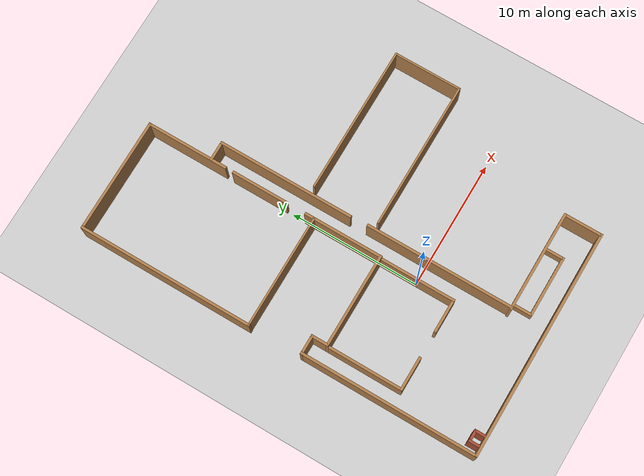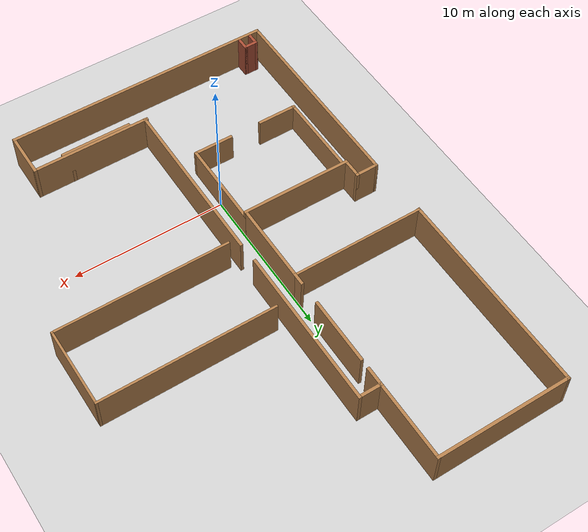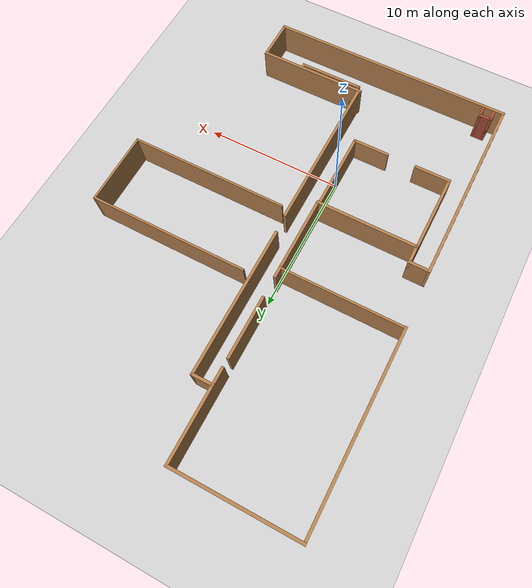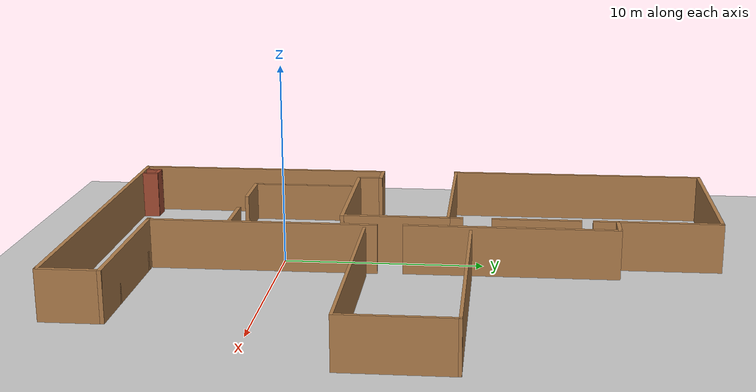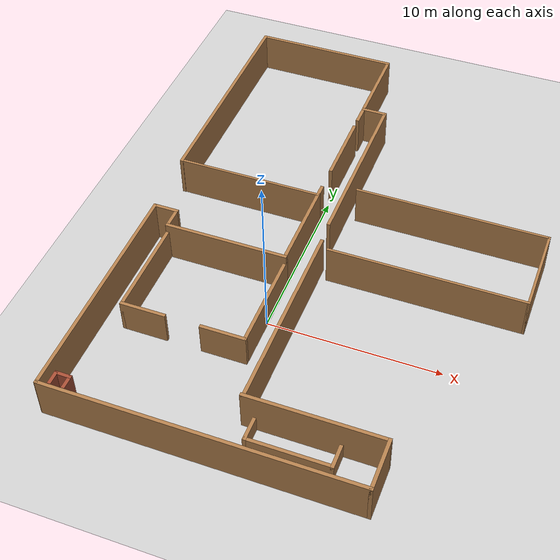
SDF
<sdf version="1.7">
 <world name="default">
  <light name="sun" type="directional">
   <pose>0 0 10 0 -0 0</pose>
   <diffuse>0.8 0.8 0.8 1</diffuse>
   <specular>0.2 0.2 0.2 1</specular>
   <attenuation>
    <range>1000</range>
    <constant>0.9</constant>
    <linear>0.01</linear>
    <quadratic>0.001</quadratic>
   </attenuation>
   <direction>-0.5 0.1 -0.9</direction>
   <spot><inner_angle>0</inner_angle><outer_angle>0</outer_angle><falloff>0</falloff></spot>
  </light>
  <model name="ground_plane">
   <static>1</static>
   <link name="link">
    <collision name="collision">
     <geometry><plane><normal>0 0 1</normal><size>100 100</size></plane></geometry>
     <surface>
      <contact><collide_bitmask>65535</collide_bitmask></contact>
      <friction><ode><mu>100</mu><mu2>50</mu2></ode></friction>
     </surface>
    </collision>
    <visual name="visual">
     <cast_shadows>0</cast_shadows>
     <geometry><plane><normal>0 0 1</normal><size>100 100</size></plane></geometry>
     <material>
      <script><uri>file://media/materials/scripts/gazebo.material</uri><name>Gazebo/Grey</name></script>
     </material>
    </visual>
   </link>
  </model>
  <gravity>0 0 -9.8</gravity>
  <magnetic_field>6e-06 2.3e-05 -4.2e-05</magnetic_field>
  <atmosphere type="adiabatic"/>
  <physics type="ode">
   <max_step_size>0.001</max_step_size>
   <real_time_factor>1</real_time_factor>
   <real_time_update_rate>1000</real_time_update_rate>
  </physics>
  <scene><ambient>0.4 0.4 0.7 1</ambient><background>0.7 0.7 0.7 1</background><shadows>1</shadows></scene>
  <spherical_coordinates>
   <surface_model>EARTH_WGS84</surface_model>
   <latitude_deg>0</latitude_deg>
   <longitude_deg>0</longitude_deg>
   <elevation>0</elevation>
   <heading_deg>0</heading_deg>
  </spherical_coordinates>
  <model name="lounge">
   <pose>0.24984 3.58928 0 0 -0 0</pose>
   <link name="Wall_1">
    <collision name="Wall_1_Collision">
     <geometry><box><size>7.32 0.2 2.5</size></box></geometry>
     <pose>0 0 1.25 0 -0 0</pose>
    </collision>
    <visual name="Wall_1_Visual">
     <pose>0 0 1.25 0 -0 0</pose>
     <geometry><box><size>7.32 0.2 2.5</size></box></geometry>
     <material>
      <script><uri>file://media/materials/scripts/gazebo.material</uri><name>Gazebo/Wood</name></script>
      <ambient>1 1 1 1</ambient>
     </material>
     <meta><layer>0</layer></meta>
    </visual>
    <pose>-3.84095 -0.669 0 0 -0 0</pose>
   </link>
   <link name="Wall_12">
    <collision name="Wall_12_Collision">
     <geometry><box><size>17.693 0.2 2.5</size></box></geometry>
     <pose>0 0 1.25 0 -0 0</pose>
    </collision>
    <visual name="Wall_12_Visual">
     <pose>0 0 1.25 0 -0 0</pose>
     <geometry><box><size>17.693 0.2 2.5</size></box></geometry>
     <material>
      <script><uri>file://media/materials/scripts/gazebo.material</uri><name>Gazebo/Wood</name></script>
      <ambient>1 1 1 1</ambient>
     </material>
     <meta><layer>0</layer></meta>
    </visual>
    <pose>0.021555 -12.99 0 0 -0 0</pose>
   </link>
   <link name="Wall_2">
    <collision name="Wall_2_Collision">
     <geometry><box><size>6 0.2 2</size></box></geometry>
     <pose>0 0 1 0 -0 0</pose>
    </collision>
    <visual name="Wall_2_Visual">
     <pose>0 0 1 0 -0 0</pose>
     <geometry><box><size>6 0.2 2</size></box></geometry>
     <material>
      <script><uri>file://media/materials/scripts/gazebo.material</uri><name>Gazebo/Wood</name></script>
      <ambient>1 1 1 1</ambient>
     </material>
     <meta><layer>0</layer></meta>
    </visual>
    <pose>-0.280945 -3.569 0 0 -0 -1.5708</pose>
   </link>
   <link name="Wall_37">
    <collision name="Wall_37_Collision">
     <geometry><box><size>13.7 0.2 2.5</size></box></geometry>
     <pose>0 0 1.25 0 -0 0</pose>
    </collision>
    <visual name="Wall_37_Visual">
     <pose>0 0 1.25 0 -0 0</pose>
     <geometry><box><size>13.7 0.2 2.5</size></box></geometry>
     <material>
      <script><uri>file://media/materials/scripts/gazebo.material</uri><name>Gazebo/Wood</name></script>
      <ambient>1 1 1 1</ambient>
     </material>
     <meta><layer>0</layer></meta>
    </visual>
    <pose>-8.76794 -6.219 0 0 -0 1.5708</pose>
   </link>
   <link name="Wall_4">
    <collision name="Wall_4_Collision">
     <geometry><box><size>6 0.2 2</size></box></geometry>
     <pose>0 0 1 0 -0 0</pose>
    </collision>
    <visual name="Wall_4_Visual">
     <pose>0 0 1 0 -0 0</pose>
     <geometry><box><size>6 0.2 2</size></box></geometry>
     <material>
      <script><uri>file://media/materials/scripts/gazebo.material</uri><name>Gazebo/Wood</name></script>
      <ambient>1 1 1 1</ambient>
     </material>
     <meta><layer>0</layer></meta>
    </visual>
    <pose>-7.40095 -3.569 0 0 -0 -1.5708</pose>
   </link>
   <link name="Wall_41">
    <collision name="Wall_41_Collision">
     <geometry><box><size>1.4 0.2 2.5</size></box></geometry>
     <pose>0 0 1.25 0 -0 0</pose>
    </collision>
    <visual name="Wall_41_Visual">
     <pose>0 0 1.25 0 -0 0</pose>
     <geometry><box><size>1.4 0.2 2.5</size></box></geometry>
     <material>
      <script><uri>file://media/materials/scripts/gazebo.material</uri><name>Gazebo/Wood</name></script>
      <ambient>1 1 1 1</ambient>
     </material>
     <meta><layer>0</layer></meta>
    </visual>
    <pose>-7.40095 -0.069 0 0 -0 1.5708</pose>
   </link>
   <link name="Wall_43">
    <collision name="Wall_43_Collision">
     <geometry><box><size>1.56722 0.2 2.5</size></box></geometry>
     <pose>0 0 1.25 0 -0 0</pose>
    </collision>
    <visual name="Wall_43_Visual">
     <pose>0 0 1.25 0 -0 0</pose>
     <geometry><box><size>1.56722 0.2 2.5</size></box></geometry>
     <material>
      <script><uri>file://media/materials/scripts/gazebo.material</uri><name>Gazebo/Wood</name></script>
      <ambient>1 1 1 1</ambient>
     </material>
     <meta><layer>0</layer></meta>
    </visual>
    <pose>-8.08445 0.531 0 0 -0 0</pose>
   </link>
   <link name="Wall_45">
    <collision name="Wall_45_Collision">
     <geometry><box><size>1.6 0.2 2.5</size></box></geometry>
     <pose>0 0 1.25 0 -0 0</pose>
    </collision>
    <visual name="Wall_45_Visual">
     <pose>0 0 1.25 0 -0 0</pose>
     <geometry><box><size>1.6 0.2 2.5</size></box></geometry>
     <material>
      <script><uri>file://media/materials/scripts/gazebo.material</uri><name>Gazebo/Wood</name></script>
      <ambient>1 1 1 1</ambient>
     </material>
     <meta><layer>0</layer></meta>
    </visual>
    <pose>0.418055 12.99 0 0 -0 0</pose>
   </link>
   <link name="Wall_5">
    <collision name="Wall_5_Collision">
     <geometry><box><size>2.67 0.2 2</size></box></geometry>
     <pose>0 0 1 0 -0 0</pose>
    </collision>
    <visual name="Wall_5_Visual">
     <pose>0 0 1 0 -0 0</pose>
     <geometry><box><size>2.67 0.2 2</size></box></geometry>
     <material>
      <script><uri>file://media/materials/scripts/gazebo.material</uri><name>Gazebo/Wood</name></script>
      <ambient>1 1 1 1</ambient>
     </material>
     <meta><layer>0</layer></meta>
    </visual>
    <pose>-6.16594 -6.469 0 0 -0 0</pose>
   </link>
   <link name="Wall_51">
    <collision name="Wall_51_Collision">
     <geometry><box><size>7.85 0.2 2.5</size></box></geometry>
     <pose>0 0 1.25 0 -0 0</pose>
    </collision>
    <visual name="Wall_51_Visual">
     <pose>0 0 1.25 0 -0 0</pose>
     <geometry><box><size>7.85 0.2 2.5</size></box></geometry>
     <material>
      <script><uri>file://media/materials/scripts/gazebo.material</uri><name>Gazebo/Wood</name></script>
      <ambient>1 1 1 1</ambient>
     </material>
     <meta><layer>0</layer></meta>
    </visual>
    <pose>4.94306 -10.14 0 0 -0 0</pose>
   </link>
   <link name="Wall_53">
    <collision name="Wall_53_Collision">
     <geometry><box><size>3.05 0.2 2.5</size></box></geometry>
     <pose>0 0 1.25 0 -0 0</pose>
    </collision>
    <visual name="Wall_53_Visual">
     <pose>0 0 1.25 0 -0 0</pose>
     <geometry><box><size>3.05 0.2 2.5</size></box></geometry>
     <material>
      <script><uri>file://media/materials/scripts/gazebo.material</uri><name>Gazebo/Wood</name></script>
      <ambient>1 1 1 1</ambient>
     </material>
     <meta><layer>0</layer></meta>
    </visual>
    <pose>8.76806 -11.565 0 0 -0 1.5708</pose>
   </link>
   <link name="Wall_57">
    <collision name="Wall_57_Collision">
     <geometry><box><size>1.61 0.2 1</size></box></geometry>
     <pose>0 0 0.5 0 -0 0</pose>
    </collision>
    <visual name="Wall_57_Visual">
     <pose>0 0 0.5 0 -0 0</pose>
     <geometry><box><size>1.61 0.2 1</size></box></geometry>
     <material>
      <script><uri>file://media/materials/scripts/gazebo.material</uri><name>Gazebo/Wood</name></script>
      <ambient>1 1 1 1</ambient>
     </material>
     <meta><layer>0</layer></meta>
    </visual>
    <pose>1.78005 -10.845 0 0 -0 -1.5708</pose>
   </link>
   <link name="Wall_58">
    <collision name="Wall_58_Collision">
     <geometry><box><size>4.81 0.2 1</size></box></geometry>
     <pose>0 0 0.5 0 -0 0</pose>
    </collision>
    <visual name="Wall_58_Visual">
     <pose>0 0 0.5 0 -0 0</pose>
     <geometry><box><size>4.81 0.2 1</size></box></geometry>
     <material>
      <script><uri>file://media/materials/scripts/gazebo.material</uri><name>Gazebo/Wood</name></script>
      <ambient>1 1 1 1</ambient>
     </material>
     <meta><layer>0</layer></meta>
    </visual>
    <pose>4.08505 -11.55 0 0 -0 0</pose>
   </link>
   <link name="Wall_59">
    <collision name="Wall_59_Collision">
     <geometry><box><size>1.61 0.2 1</size></box></geometry>
     <pose>0 0 0.5 0 -0 0</pose>
    </collision>
    <visual name="Wall_59_Visual">
     <pose>0 0 0.5 0 -0 0</pose>
     <geometry><box><size>1.61 0.2 1</size></box></geometry>
     <material>
      <script><uri>file://media/materials/scripts/gazebo.material</uri><name>Gazebo/Wood</name></script>
      <ambient>1 1 1 1</ambient>
     </material>
     <meta><layer>0</layer></meta>
    </visual>
    <pose>6.39006 -10.845 0 0 -0 1.5708</pose>
   </link>
   <link name="Wall_61">
    <collision name="Wall_61_Collision">
     <geometry><box><size>10.6 0.2 2.5</size></box></geometry>
     <pose>0 0 1.25 0 -0 0</pose>
    </collision>
    <visual name="Wall_61_Visual">
     <pose>0 0 1.25 0 -0 0</pose>
     <geometry><box><size>10.6 0.2 2.5</size></box></geometry>
     <material>
      <script><uri>file://media/materials/scripts/gazebo.material</uri><name>Gazebo/Wood</name></script>
      <ambient>1 1 1 1</ambient>
     </material>
     <meta><layer>0</layer></meta>
    </visual>
    <pose>1.11806 7.79 0 0 -0 -1.5708</pose>
   </link>
   <link name="Wall_63">
    <collision name="Wall_63_Collision">
     <geometry><box><size>11.5 0.2 2.5</size></box></geometry>
     <pose>0 0 1.25 0 -0 0</pose>
    </collision>
    <visual name="Wall_63_Visual">
     <pose>0 0 1.25 0 -0 0</pose>
     <geometry><box><size>11.5 0.2 2.5</size></box></geometry>
     <material>
      <script><uri>file://media/materials/scripts/gazebo.material</uri><name>Gazebo/Wood</name></script>
      <ambient>1 1 1 1</ambient>
     </material>
     <meta><layer>0</layer></meta>
    </visual>
    <pose>1.2 -4.49 0 0 -0 1.5708</pose>
   </link>
   <link name="Wall_7">
    <collision name="Wall_7_Collision">
     <geometry><box><size>2.67 0.2 2</size></box></geometry>
     <pose>0 0 1 0 -0 0</pose>
    </collision>
    <visual name="Wall_7_Visual">
     <pose>0 0 1 0 -0 0</pose>
     <geometry><box><size>2.67 0.2 2</size></box></geometry>
     <material>
      <script><uri>file://media/materials/scripts/gazebo.material</uri><name>Gazebo/Wood</name></script>
      <ambient>1 1 1 1</ambient>
     </material>
     <meta><layer>0</layer></meta>
    </visual>
    <pose>-1.51595 -6.469 0 0 -0 3.14159</pose>
   </link>
   <static>1</static>
  </model>
  <model name="lecture">
   <pose>7.64778 6.8415 -0 0 -0 0</pose>
   <link name="Wall_0">
    <collision name="Wall_0_Collision">
     <geometry><box><size>11.45 0.15 2.5</size></box></geometry>
     <pose>0 0 1.25 0 -0 0</pose>
    </collision>
    <visual name="Wall_0_Visual">
     <pose>0 0 1.25 0 -0 0</pose>
     <geometry><box><size>11.45 0.15 2.5</size></box></geometry>
     <material>
      <script><uri>file://media/materials/scripts/gazebo.material</uri><name>Gazebo/Wood</name></script>
      <ambient>1 1 1 1</ambient>
     </material>
     <meta><layer>0</layer></meta>
    </visual>
    <pose>-0 -2.575 0 0 -0 0</pose>
   </link>
   <link name="Wall_1">
    <collision name="Wall_1_Collision">
     <geometry><box><size>5.3 0.15 2.5</size></box></geometry>
     <pose>0 0 1.25 0 -0 0</pose>
    </collision>
    <visual name="Wall_1_Visual">
     <pose>0 0 1.25 0 -0 0</pose>
     <geometry><box><size>5.3 0.15 2.5</size></box></geometry>
     <material>
      <script><uri>file://media/materials/scripts/gazebo.material</uri><name>Gazebo/Wood</name></script>
      <ambient>1 1 1 1</ambient>
     </material>
     <meta><layer>0</layer></meta>
    </visual>
    <pose>5.65 -0 0 0 -0 1.5708</pose>
   </link>
   <link name="Wall_2">
    <collision name="Wall_2_Collision">
     <geometry><box><size>11.45 0.15 2.5</size></box></geometry>
     <pose>0 0 1.25 0 -0 0</pose>
    </collision>
    <visual name="Wall_2_Visual">
     <pose>0 0 1.25 0 -0 0</pose>
     <geometry><box><size>11.45 0.15 2.5</size></box></geometry>
     <material>
      <script><uri>file://media/materials/scripts/gazebo.material</uri><name>Gazebo/Wood</name></script>
      <ambient>1 1 1 1</ambient>
     </material>
     <meta><layer>0</layer></meta>
    </visual>
    <pose>-0 2.575 0 0 -0 3.14159</pose>
   </link>
   <static>1</static>
  </model>
  <model name="experiment">
   <pose>-2.55572 12.3801 0 0 -0 0</pose>
   <link name="Wall_10">
    <collision name="Wall_10_Collision">
     <geometry><box><size>8.82 0.15 2.5</size></box></geometry>
     <pose>0 0 1.25 0 -0 0</pose>
    </collision>
    <visual name="Wall_10_Visual">
     <pose>0 0 1.25 0 -0 0</pose>
     <geometry><box><size>8.82 0.15 2.5</size></box></geometry>
     <material>
      <script><uri>file://media/materials/scripts/gazebo.material</uri><name>Gazebo/Wood</name></script>
      <ambient>1 1 1 1</ambient>
     </material>
     <meta><layer>0</layer></meta>
    </visual>
    <pose>-1.813 -4.16005 0 0 -0 3.14159</pose>
   </link>
   <link name="Wall_12">
    <collision name="Wall_12_Collision">
     <geometry><box><size>13.62 0.2 2.5</size></box></geometry>
     <pose>0 0 1.25 0 -0 0</pose>
    </collision>
    <visual name="Wall_12_Visual">
     <pose>0 0 1.25 0 -0 0</pose>
     <geometry><box><size>13.62 0.2 2.5</size></box></geometry>
     <material>
      <script><uri>file://media/materials/scripts/gazebo.material</uri><name>Gazebo/Wood</name></script>
      <ambient>1 1 1 1</ambient>
     </material>
     <meta><layer>0</layer></meta>
    </visual>
    <pose>-6.148 2.54995 0 0 -0 1.5708</pose>
   </link>
   <link name="Wall_14">
    <collision name="Wall_14_Collision">
     <geometry><box><size>8.87 0.2 2.5</size></box></geometry>
     <pose>0 0 1.25 0 -0 0</pose>
    </collision>
    <visual name="Wall_14_Visual">
     <pose>0 0 1.25 0 -0 0</pose>
     <geometry><box><size>8.87 0.2 2.5</size></box></geometry>
     <material>
      <script><uri>file://media/materials/scripts/gazebo.material</uri><name>Gazebo/Wood</name></script>
      <ambient>1 1 1 1</ambient>
     </material>
     <meta><layer>0</layer></meta>
    </visual>
    <pose>-1.813 9.25995 0 0 -0 0</pose>
   </link>
   <link name="Wall_16">
    <collision name="Wall_16_Collision">
     <geometry><box><size>6.3802 0.2 2.5</size></box></geometry>
     <pose>0 0 1.25 0 -0 0</pose>
    </collision>
    <visual name="Wall_16_Visual">
     <pose>0 0 1.25 0 -0 0</pose>
     <geometry><box><size>6.3802 0.2 2.5</size></box></geometry>
     <material>
      <script><uri>file://media/materials/scripts/gazebo.material</uri><name>Gazebo/Wood</name></script>
      <ambient>1 1 1 1</ambient>
     </material>
     <meta><layer>0</layer></meta>
    </visual>
    <pose>2.522 6.16995 0 0 -0 -1.5708</pose>
   </link>
   <link name="Wall_2">
    <collision name="Wall_2_Collision">
     <geometry><box><size>4.44956 0.2 2.5</size></box></geometry>
     <pose>0 0 1.25 0 -0 0</pose>
    </collision>
    <visual name="Wall_2_Visual">
     <pose>0 0 1.25 0 -0 0</pose>
     <geometry><box><size>4.44956 0.2 2.5</size></box></geometry>
     <material>
      <script><uri>file://media/materials/scripts/gazebo.material</uri><name>Gazebo/Wood</name></script>
      <ambient>1 1 1 1</ambient>
     </material>
     <meta><layer>0</layer></meta>
    </visual>
    <pose>2.522 0.224949 0 0 -0 -1.5708</pose>
   </link>
   <link name="Wall_6">
    <collision name="Wall_6_Collision">
     <geometry><box><size>0.85 0.2 2.5</size></box></geometry>
     <pose>0 0 1.25 0 -0 0</pose>
    </collision>
    <visual name="Wall_6_Visual">
     <pose>0 0 1.25 0 -0 0</pose>
     <geometry><box><size>0.85 0.2 2.5</size></box></geometry>
     <material>
      <script><uri>file://media/materials/scripts/gazebo.material</uri><name>Gazebo/Wood</name></script>
      <ambient>1 1 1 1</ambient>
     </material>
     <meta><layer>0</layer></meta>
    </visual>
    <pose>2.522 -3.83505 0 0 -0 -1.5708</pose>
   </link>
   <link name="Wall_8">
    <collision name="Wall_8_Collision">
     <geometry><box><size>5.3 0.2 2.5</size></box></geometry>
     <pose>0 0 1.25 0 -0 0</pose>
    </collision>
    <visual name="Wall_8_Visual">
     <pose>0 0 1.25 0 -0 0</pose>
     <geometry><box><size>5.3 0.2 2.5</size></box></geometry>
     <material>
      <script><uri>file://media/materials/scripts/gazebo.material</uri><name>Gazebo/Wood</name></script>
      <ambient>1 1 1 1</ambient>
     </material>
     <meta><layer>0</layer></meta>
    </visual>
    <pose>2.522 -6.71005 0 0 -0 -1.5708</pose>
   </link>
   <static>1</static>
  </model>
  <model name="vending">
   <pose>-8.19348 -8.96954 0 0 -0 3.14159</pose>
   <link name="Wall_20">
    <collision name="Wall_20_Collision">
     <geometry><box><size>0.85 0.2 2.5</size></box></geometry>
     <pose>0 0 1.25 0 -0 0</pose>
    </collision>
    <visual name="Wall_20_Visual">
     <pose>0 0 1.25 0 -0 0</pose>
     <geometry><box><size>0.85 0.2 2.5</size></box></geometry>
     <material>
      <script><uri>file://media/materials/scripts/gazebo.material</uri><name>Gazebo/Bricks</name></script>
      <ambient>1 1 1 1</ambient>
     </material>
     <meta><layer>0</layer></meta>
    </visual>
    <pose>-1.104 -0.1045 0 0 -0 -1.5708</pose>
   </link>
   <link name="Wall_21">
    <collision name="Wall_21_Collision">
     <geometry><box><size>0.98 0.2 2.5</size></box></geometry>
     <pose>0 0 1.25 0 -0 0</pose>
    </collision>
    <visual name="Wall_21_Visual">
     <pose>0 0 1.25 0 -0 0</pose>
     <geometry><box><size>0.98 0.2 2.5</size></box></geometry>
     <material>
      <script><uri>file://media/materials/scripts/gazebo.material</uri><name>Gazebo/Bricks</name></script>
      <ambient>1 1 1 1</ambient>
     </material>
     <meta><layer>0</layer></meta>
    </visual>
    <pose>-0.714 -0.4295 0 0 -0 0</pose>
   </link>
   <link name="Wall_22">
    <collision name="Wall_22_Collision">
     <geometry><box><size>0.85 0.2 2.5</size></box></geometry>
     <pose>0 0 1.25 0 -0 0</pose>
    </collision>
    <visual name="Wall_22_Visual">
     <pose>0 0 1.25 0 -0 0</pose>
     <geometry><box><size>0.85 0.2 2.5</size></box></geometry>
     <material>
      <script><uri>file://media/materials/scripts/gazebo.material</uri><name>Gazebo/Bricks</name></script>
      <ambient>1 1 1 1</ambient>
     </material>
     <meta><layer>0</layer></meta>
    </visual>
    <pose>-0.324 -0.1045 0 0 -0 1.5708</pose>
   </link>
   <static>1</static>
  </model>
 </world>
</sdf>
